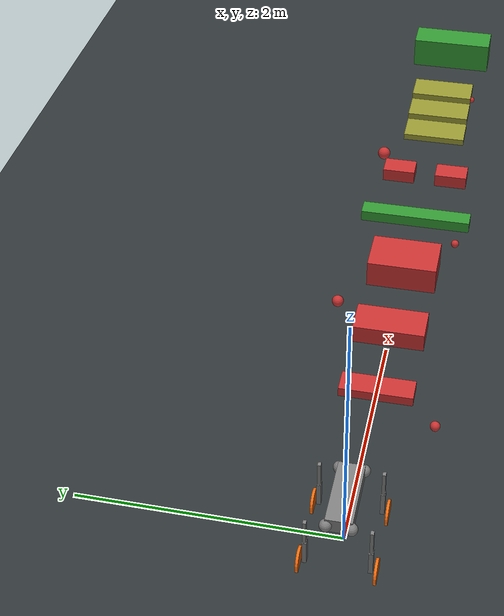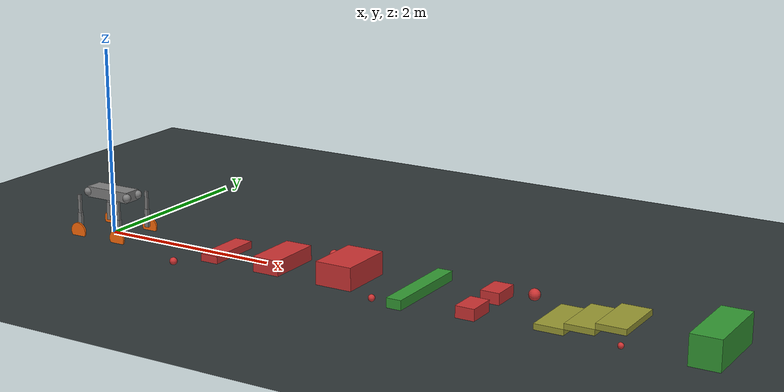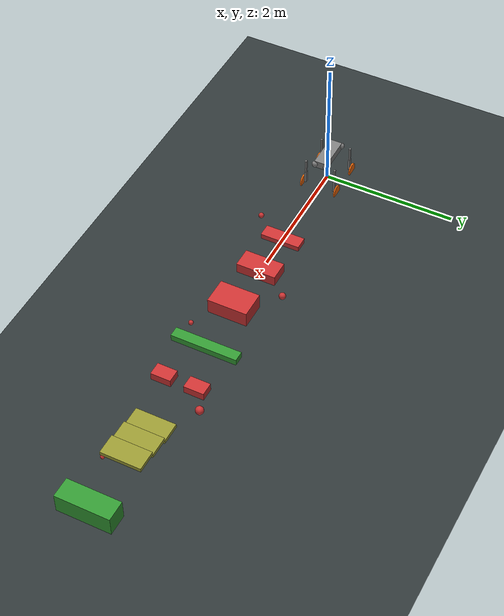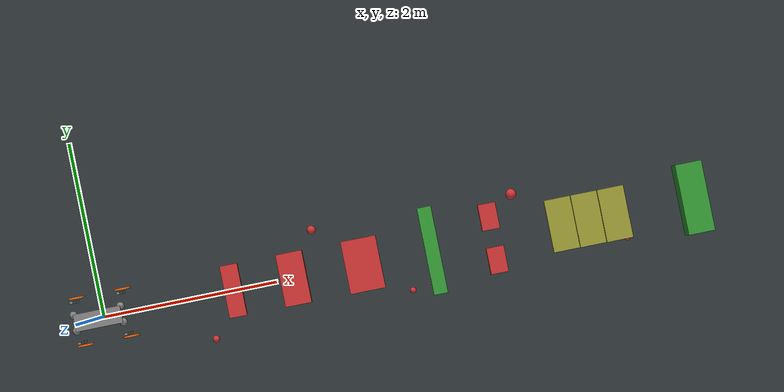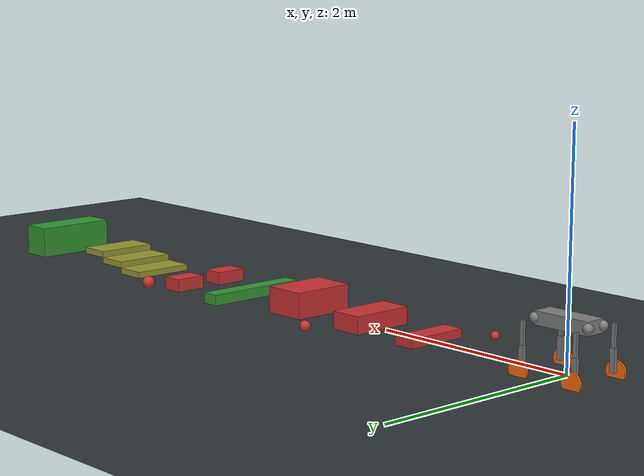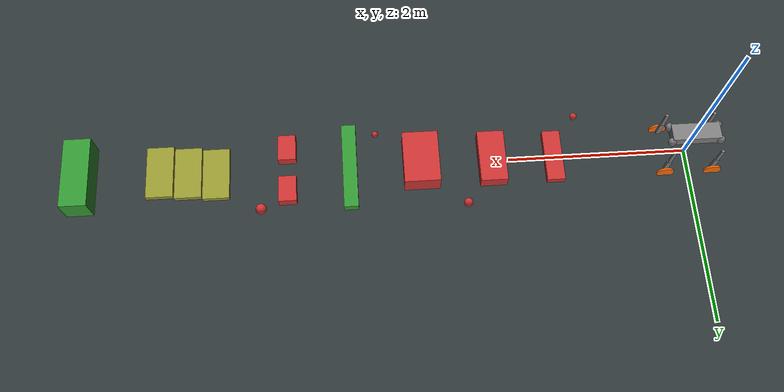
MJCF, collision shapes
<mujoco model="titatit_obstacles">
  <include file="../wheeled_titatit_rl.xml"/>

  <statistic center="2 0 0.4" extent="4"/>

  <visual>
    <headlight diffuse="0.6 0.6 0.6" ambient="0.35 0.35 0.35" specular="0 0 0"/>
    <rgba haze="0.15 0.25 0.35 1"/>
    <global azimuth="-120" elevation="-20"/>
  </visual>

  <asset>
    <texture type="skybox" builtin="gradient" rgb1="0.35 0.5 0.7" rgb2="0.02 0.03 0.04" width="512" height="3072"/>
    <texture type="2d" name="groundplane" builtin="checker" mark="edge" rgb1="0.25 0.28 0.28" rgb2="0.12 0.15 0.16" markrgb="0.8 0.8 0.8" width="300" height="300"/>
    <material name="groundplane" texture="groundplane" texuniform="true" texrepeat="5 5" reflectance="0.15"/>
    <material name="block_mat" rgba="0.8 0.2 0.2 1"/>
    <material name="barrier_mat" rgba="0.2 0.6 0.2 1"/>
    <material name="ramp_mat" rgba="0.6 0.6 0.2 1"/>
  </asset>

  <worldbody>
    <light pos="0 0 2.5" dir="0 0 -1" directional="true"/>
    <geom name="floor" size="0 0 0.05" type="plane" material="groundplane" friction="1.0 0.01 0.01"/>

    <!-- ===== 分散障碍物 ===== -->

    <!-- 1. 单个小方块 (跨越测试) -->
    <geom name="block_01" pos="1.5 0.0 0.04" type="box" size="0.1 0.3 0.04" material="block_mat"/>

    <!-- 2. 中等方块 -->
    <geom name="block_02" pos="2.2 0.0 0.08" type="box" size="0.15 0.3 0.08" material="block_mat"/>

    <!-- 3. 大障碍物 (需要绕行或爬过) -->
    <geom name="block_03" pos="3.0 0.0 0.12" type="box" size="0.2 0.3 0.12" material="block_mat"/>

    <!-- 4. 长条形障碍物 (横跨路面) -->
    <geom name="barrier_01" pos="3.8 0.0 0.05" type="box" size="0.08 0.5 0.05" material="barrier_mat"/>

    <!-- 5. 双障碍物 (左右各一个, 中间留缝) -->
    <geom name="block_04L" pos="4.5 -0.25 0.06" type="box" size="0.1 0.15 0.06" material="block_mat"/>
    <geom name="block_04R" pos="4.5 0.25 0.06" type="box" size="0.1 0.15 0.06" material="block_mat"/>

    <!-- 6. 小斜坡 (用倾斜box模拟) -->
    <!-- 用阶梯近似: 前低后高 -->
    <geom name="ramp_low" pos="5.3 0.0 0.03" type="box" size="0.15 0.3 0.03" material="ramp_mat"/>
    <geom name="ramp_high" pos="5.6 0.0 0.09" type="box" size="0.15 0.3 0.03" material="ramp_mat"/>
    <geom name="ramp_top" pos="5.9 0.0 0.15" type="box" size="0.15 0.3 0.03" material="ramp_mat"/>

    <!-- 7. 分散小石块 (随机位置) -->
    <geom name="rock_01" pos="1.2 -0.5 0.02" type="sphere" size="0.04" material="block_mat"/>
    <geom name="rock_02" pos="2.5 0.5 0.03" type="sphere" size="0.05" material="block_mat"/>
    <geom name="rock_03" pos="3.5 -0.4 0.025" type="sphere" size="0.035" material="block_mat"/>
    <geom name="rock_04" pos="4.8 0.45 0.04" type="sphere" size="0.06" material="block_mat"/>
    <geom name="rock_05" pos="6.0 -0.3 0.02" type="sphere" size="0.03" material="block_mat"/>

    <!-- 8. 高障碍物 (测试侧向绕行) -->
    <geom name="tall_block" pos="6.8 0.0 0.15" type="box" size="0.15 0.4 0.15" material="barrier_mat"/>
  </worldbody>
</mujoco>

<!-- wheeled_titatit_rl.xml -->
<mujoco model="wheeled_titatit">
  <compiler angle="radian" autolimits="true" meshdir="../meshes_mujoco_decimated"/>
  <option cone="elliptic" impratio="100"/>

  <asset>
    <material name="grey" rgba="0.75294 0.75294 0.75294 1"/>
    <material name="orange" rgba="1.0 0.4235 0.0392 1.0"/>

    <!-- STL mesh 文件 -->
    <mesh name="base" file="base.STL"/>
    <mesh name="FR_hip" file="FR_hip.STL"/>
    <mesh name="FR_thigh" file="FR_thigh.STL"/>
    <mesh name="FR_calf" file="FR_calf.STL"/>
    <mesh name="FR_foot" file="FR_foot.STL"/>
    <mesh name="FL_hip" file="FL_hip.STL"/>
    <mesh name="FL_thigh" file="FL_thigh.STL"/>
    <mesh name="FL_calf" file="FL_calf.STL"/>
    <mesh name="FL_foot" file="FL_foot.STL"/>
    <mesh name="RR_hip" file="RR_hip.STL"/>
    <mesh name="RR_thigh" file="RR_thigh.STL"/>
    <mesh name="RR_calf" file="RR_calf.STL"/>
    <mesh name="RR_foot" file="RR_foot.STL"/>
    <mesh name="RL_hip" file="RL_hip.STL"/>
    <mesh name="RL_thigh" file="RL_thigh.STL"/>
    <mesh name="RL_calf" file="RL_calf.STL"/>
    <mesh name="RL_foot" file="RL_foot.STL"/>
    <mesh name="FL_battery" file="FL_battery.STL"/>
    <mesh name="FR_battery" file="FR_battery.STL"/>
    <mesh name="RL_battery" file="RL_battery.STL"/>
    <mesh name="RR_battery" file="RR_battery.STL"/>
  </asset>

  <worldbody>
    <body name="base" pos="0 0 0.44">
      <inertial pos="0.00610416 -0.00013472 0.03915073" mass="27.81177332" fullinertia="0.33505891 0.51538714 0.39690016 0.00083495 -0.09078959 0.00152686"/>
      <freejoint/>
      <site name="trunk_imu" size="0.01"/>
      <!-- 视觉 mesh (仅渲染, 不参与碰撞) -->
      <geom type="mesh" mesh="base" material="grey" group="1" contype="0" conaffinity="0"/>
      <!-- 碰撞简化体 -->
      <geom size="0.266 0.097 0.057" type="box" contype="1" conaffinity="1" density="0"/>

      <!-- FR leg -->
      <body name="FR_hip" pos="0.26556 -0.0895 0">
        <inertial pos="0.00160252 -5.02529e-05 0.000638012" quat="0.999804 0.00104431 -0.0197557 9.54749e-05" mass="2.06397" diaginertia="0.00430756 0.0029982 0.00226716"/>
        <joint name="FR_hip_joint" axis="1 0 0" range="-0.802851 0.802851" actuatorfrcrange="-55 55"/>
        <!-- 视觉 mesh (仅渲染, 不参与碰撞) -->
        <geom type="mesh" mesh="FR_hip" material="grey" group="1" quat="0.5 0.5 -0.5 -0.5" contype="0" conaffinity="0"/>
        <!-- 碰撞简化体 -->
        <geom size="0.045" type="sphere" contype="1" conaffinity="1" density="0"/>
        <body name="FR_thigh" pos="0 -0.1426 0">
          <inertial pos="0.0198087 -0.000674483 -0.0280301" quat="0.00924299 0.711846 -0.0115591 0.70218" mass="3.08319" diaginertia="0.00882828 0.00650388 0.00294907"/>
          <joint name="FR_thigh_joint" axis="0 1 0" range="-1.0472 4.18879" actuatorfrcrange="-55 55"/>
          <!-- 视觉 mesh (仅渲染, 不参与碰撞) -->
          <geom type="mesh" mesh="FR_thigh" material="grey" group="1" quat="0.5 0.5 0.5 -0.5" contype="0" conaffinity="0"/>
          <!-- 碰撞简化体 -->
          <geom size="0.1 0.01225 0.017" pos="0 0 -0.1" quat="0.707107 0 0.707107 0" type="box" contype="1" conaffinity="1" density="0"/>
          <body name="FR_calf" pos="0 0 -0.2">
            <inertial pos="0.00183801 -0.0116984 -0.0953485" quat="0.997993 -0.0599704 0.0191198 0.00689675" mass="0.572443" diaginertia="0.00342535 0.00324383 0.00025855"/>
            <joint name="FR_calf_joint" axis="0 1 0" range="-2.69653 -0.916298" actuatorfrcrange="-55 55"/>
            <!-- 视觉 mesh (仅渲染, 不参与碰撞) -->
            <geom type="mesh" mesh="FR_calf" material="grey" group="1" quat="0.5 0.5 0.5 -0.5" contype="0" conaffinity="0"/>
            <!-- 碰撞简化体 -->
            <geom size="0.1 0.016 0.024" pos="0 0 -0.1" quat="0.707107 0 0.707107 0" type="box" contype="1" conaffinity="1" density="0"/>
            <body name="FR_foot" pos="0 0 -0.2">
              <inertial pos="0 -0.05 0" quat="0.707107 0 0 0.707107" mass="1.5" diaginertia="0.00674 0.00342 0.00342"/>
              <joint name="FR_foot_joint" axis="0 1 0" range="-1000000 1000000" actuatorfrcrange="-10 10"/>
              <!-- 轮子: cylinder 同时作为视觉和碰撞 (去掉STL mesh避免重叠) -->
              <geom size="0.0948 0.01" pos="0 -0.04 0" quat="0.707105 0.707108 0 0" type="cylinder" material="orange" contype="1" conaffinity="1" density="0"/>
            </body>
          </body>
        </body>
      </body>

      <!-- FL leg -->
      <body name="FL_hip" pos="0.26556 0.0895 0">
        <inertial pos="0.00160252 5.02529e-05 0.000637998" quat="0.999804 -0.00105031 -0.0197557 -9.57276e-05" mass="2.06397" diaginertia="0.00430756 0.0029982 0.00226716"/>
        <joint name="FL_hip_joint" axis="1 0 0" range="-0.802851 0.802851" actuatorfrcrange="-55 55"/>
        <!-- 视觉 mesh (仅渲染, 不参与碰撞) -->
        <geom type="mesh" mesh="FL_hip" material="grey" group="1" quat="0.5 0.5 0.5 0.5" contype="0" conaffinity="0"/>
        <!-- 碰撞简化体 -->
        <geom size="0.045" type="sphere" contype="1" conaffinity="1" density="0"/>
        <body name="FL_thigh" pos="0 0.1426 0">
          <inertial pos="0.0198088 0.000674375 -0.0280301" quat="-0.00924156 0.711846 0.0115573 0.70218" mass="3.08318" diaginertia="0.00882828 0.00650389 0.00294906"/>
          <joint name="FL_thigh_joint" axis="0 1 0" range="-1.0472 4.18879" actuatorfrcrange="-55 55"/>
          <!-- 视觉 mesh (仅渲染, 不参与碰撞) -->
          <geom type="mesh" mesh="FL_thigh" material="grey" group="1" quat="0.5 -0.5 0.5 0.5" contype="0" conaffinity="0"/>
          <!-- 碰撞简化体 -->
          <geom size="0.1 0.01225 0.017" pos="0 0 -0.1" quat="0.707107 0 0.707107 0" type="box" contype="1" conaffinity="1" density="0"/>
          <body name="FL_calf" pos="0 0 -0.2">
            <inertial pos="0.00183801 0.0116984 -0.0953485" quat="0.997993 0.0599704 0.0191198 -0.00689675" mass="0.572443" diaginertia="0.00342535 0.00324383 0.00025855"/>
            <joint name="FL_calf_joint" axis="0 1 0" range="-2.69653 -0.916298" actuatorfrcrange="-55 55"/>
            <!-- 视觉 mesh (仅渲染, 不参与碰撞) -->
            <geom type="mesh" mesh="FL_calf" material="grey" group="1" quat="0.5 -0.5 0.5 0.5" contype="0" conaffinity="0"/>
            <!-- 碰撞简化体 -->
            <geom size="0.1 0.016 0.024" pos="0 0 -0.1" quat="0.707107 0 0.707107 0" type="box" contype="1" conaffinity="1" density="0"/>
            <body name="FL_foot" pos="0 0 -0.2">
              <inertial pos="0 0.05 0" quat="0.707107 0 0 0.707107" mass="1.5" diaginertia="0.00674 0.00342 0.00342"/>
              <joint name="FL_foot_joint" axis="0 1 0" range="-1000000 1000000" actuatorfrcrange="-10 10"/>
              <!-- 轮子: cylinder 同时作为视觉和碰撞 (去掉STL mesh避免重叠) -->
              <geom size="0.0948 0.01" pos="0 0.04 0" quat="0.707105 0.707108 0 0" type="cylinder" material="orange" contype="1" conaffinity="1" density="0"/>
            </body>
          </body>
        </body>
      </body>

      <!-- RR leg -->
      <body name="RR_hip" pos="-0.26519 -0.0895 -0.0002">
        <inertial pos="-0.00160252 -5.02529e-05 0.000638012" quat="0.999804 0.00104431 0.0197557 -9.54749e-05" mass="2.06397" diaginertia="0.00430756 0.0029982 0.00226716"/>
        <joint name="RR_hip_joint" axis="1 0 0" range="-0.802851 0.802851" actuatorfrcrange="-55 55"/>
        <!-- 视觉 mesh (仅渲染, 不参与碰撞) -->
        <geom type="mesh" mesh="RR_hip" material="grey" group="1" quat="0.5 0.5 -0.5 -0.5" contype="0" conaffinity="0"/>
        <!-- 碰撞简化体 -->
        <geom size="0.045" type="sphere" contype="1" conaffinity="1" density="0"/>
        <body name="RR_thigh" pos="0 -0.1426 0">
          <inertial pos="-0.0198087 -0.000674483 -0.0280301" quat="-0.0115591 0.70218 0.00924299 0.711846" mass="3.08319" diaginertia="0.00882828 0.00650388 0.00294907"/>
          <joint name="RR_thigh_joint" axis="0 1 0" range="-4.18879 1.0472" actuatorfrcrange="-55 55"/>
          <!-- 视觉 mesh (仅渲染, 不参与碰撞) -->
          <geom type="mesh" mesh="RR_thigh" material="grey" group="1" quat="0.5 0.5 0.5 -0.5" contype="0" conaffinity="0"/>
          <!-- 碰撞简化体 -->
          <geom size="0.1 0.01225 0.017" pos="0 0 -0.1" quat="0.707107 0 0.707107 0" type="box" contype="1" conaffinity="1" density="0"/>
          <body name="RR_calf" pos="0 0 -0.2">
            <inertial pos="-0.00183801 -0.0116984 -0.0953485" quat="0.997993 -0.0599704 -0.0191198 -0.00689675" mass="0.572443" diaginertia="0.00342535 0.00324383 0.00025855"/>
            <joint name="RR_calf_joint" axis="0 1 0" range="-0.916298 2.69653" actuatorfrcrange="-55 55"/>
            <!-- 视觉 mesh (仅渲染, 不参与碰撞) -->
            <geom type="mesh" mesh="RR_calf" material="grey" group="1" quat="0.5 0.5 0.5 -0.5" contype="0" conaffinity="0"/>
            <!-- 碰撞简化体 -->
            <geom size="0.1 0.016 0.024" pos="0 0 -0.1" quat="0.707107 0 0.707107 0" type="box" contype="1" conaffinity="1" density="0"/>
            <body name="RR_foot" pos="0 0 -0.2">
              <inertial pos="0 -0.05 0" quat="0.707107 0 0 0.707107" mass="1.5" diaginertia="0.00674 0.00342 0.00342"/>
              <joint name="RR_foot_joint" axis="0 1 0" range="-1000000 1000000" actuatorfrcrange="-10 10"/>
              <!-- 轮子: cylinder 同时作为视觉和碰撞 (去掉STL mesh避免重叠) -->
              <geom size="0.0948 0.01" pos="0 -0.04 0" quat="0.707105 0.707108 0 0" type="cylinder" material="orange" contype="1" conaffinity="1" density="0"/>
            </body>
          </body>
        </body>
      </body>

      <!-- RL leg -->
      <body name="RL_hip" pos="-0.26556 0.0895 0">
        <inertial pos="-0.00160252 5.02529e-05 0.000637998" quat="0.999804 -0.00105031 0.0197557 9.57276e-05" mass="2.06397" diaginertia="0.00430756 0.0029982 0.00226716"/>
        <joint name="RL_hip_joint" axis="1 0 0" range="-0.802851 0.802851" actuatorfrcrange="-55 55"/>
        <!-- 视觉 mesh (仅渲染, 不参与碰撞) -->
        <geom type="mesh" mesh="RL_hip" material="grey" group="1" quat="0.5 0.5 0.5 0.5" contype="0" conaffinity="0"/>
        <!-- 碰撞简化体 -->
        <geom size="0.045" type="sphere" contype="1" conaffinity="1" density="0"/>
        <body name="RL_thigh" pos="0 0.1426 0">
          <inertial pos="-0.0198088 0.000674375 -0.0280301" quat="0.0115573 0.70218 -0.00924156 0.711846" mass="3.08318" diaginertia="0.00882828 0.00650389 0.00294906"/>
          <joint name="RL_thigh_joint" axis="0 1 0" range="-4.18879 1.0472" actuatorfrcrange="-55 55"/>
          <!-- 视觉 mesh (仅渲染, 不参与碰撞) -->
          <geom type="mesh" mesh="RL_thigh" material="grey" group="1" quat="0.5 -0.5 0.5 0.5" contype="0" conaffinity="0"/>
          <!-- 碰撞简化体 -->
          <geom size="0.1 0.01225 0.017" pos="0 0 -0.1" quat="0.707107 0 0.707107 0" type="box" contype="1" conaffinity="1" density="0"/>
          <body name="RL_calf" pos="0 0 -0.2">
            <inertial pos="-0.00183801 0.0116984 -0.0953485" quat="0.997993 0.0599704 -0.0191198 0.00689675" mass="0.572443" diaginertia="0.00342535 0.00324383 0.00025855"/>
            <joint name="RL_calf_joint" axis="0 1 0" range="0.916298 2.69653" actuatorfrcrange="-55 55"/>
            <!-- 视觉 mesh (仅渲染, 不参与碰撞) -->
            <geom type="mesh" mesh="RL_calf" material="grey" group="1" quat="0.5 -0.5 0.5 0.5" contype="0" conaffinity="0"/>
            <!-- 碰撞简化体 -->
            <geom size="0.1 0.016 0.024" pos="0 0 -0.1" quat="0.707107 0 0.707107 0" type="box" contype="1" conaffinity="1" density="0"/>
            <body name="RL_foot" pos="0 0 -0.2">
              <inertial pos="0 0.05 0" quat="0.707107 0 0 0.707107" mass="1.5" diaginertia="0.00674 0.00342 0.00342"/>
              <joint name="RL_foot_joint" axis="0 1 0" range="-1000000 1000000" actuatorfrcrange="-10 10"/>
              <!-- 轮子: cylinder 同时作为视觉和碰撞 (去掉STL mesh避免重叠) -->
              <geom size="0.0948 0.01" pos="0 0.04 0" quat="0.707105 0.707108 0 0" type="cylinder" material="orange" contype="1" conaffinity="1" density="0"/>
            </body>
          </body>
        </body>
      </body>
    </body>
  </worldbody>

  <actuator>
    <motor name="FR_hip" joint="FR_hip_joint" ctrllimited="true" ctrlrange="-55 55"/>
    <motor name="FR_thigh" joint="FR_thigh_joint" ctrllimited="true" ctrlrange="-55 55"/>
    <motor name="FR_calf" joint="FR_calf_joint" ctrllimited="true" ctrlrange="-55 55"/>
    <motor name="FR_foot" joint="FR_foot_joint" ctrllimited="true" ctrlrange="-10 10"/>
    <motor name="FL_hip" joint="FL_hip_joint" ctrllimited="true" ctrlrange="-55 55"/>
    <motor name="FL_thigh" joint="FL_thigh_joint" ctrllimited="true" ctrlrange="-55 55"/>
    <motor name="FL_calf" joint="FL_calf_joint" ctrllimited="true" ctrlrange="-55 55"/>
    <motor name="FL_foot" joint="FL_foot_joint" ctrllimited="true" ctrlrange="-10 10"/>
    <motor name="RR_hip" joint="RR_hip_joint" ctrllimited="true" ctrlrange="-55 55"/>
    <motor name="RR_thigh" joint="RR_thigh_joint" ctrllimited="true" ctrlrange="-55 55"/>
    <motor name="RR_calf" joint="RR_calf_joint" ctrllimited="true" ctrlrange="-55 55"/>
    <motor name="RR_foot" joint="RR_foot_joint" ctrllimited="true" ctrlrange="-10 10"/>
    <motor name="RL_hip" joint="RL_hip_joint" ctrllimited="true" ctrlrange="-55 55"/>
    <motor name="RL_thigh" joint="RL_thigh_joint" ctrllimited="true" ctrlrange="-55 55"/>
    <motor name="RL_calf" joint="RL_calf_joint" ctrllimited="true" ctrlrange="-55 55"/>
    <motor name="RL_foot" joint="RL_foot_joint" ctrllimited="true" ctrlrange="-10 10"/>
  </actuator>

  <sensor>
    <framequat name="trunk_quat" objtype="site" objname="trunk_imu"/>
    <gyro name="trunk_gyro" site="trunk_imu"/>
    <accelerometer name="trunk_accel" site="trunk_imu"/>
    <framepos name="frame_pos" objtype="site" objname="trunk_imu"/>
    <framelinvel name="frame_vel" objtype="site" objname="trunk_imu"/>
  </sensor>
</mujoco>
